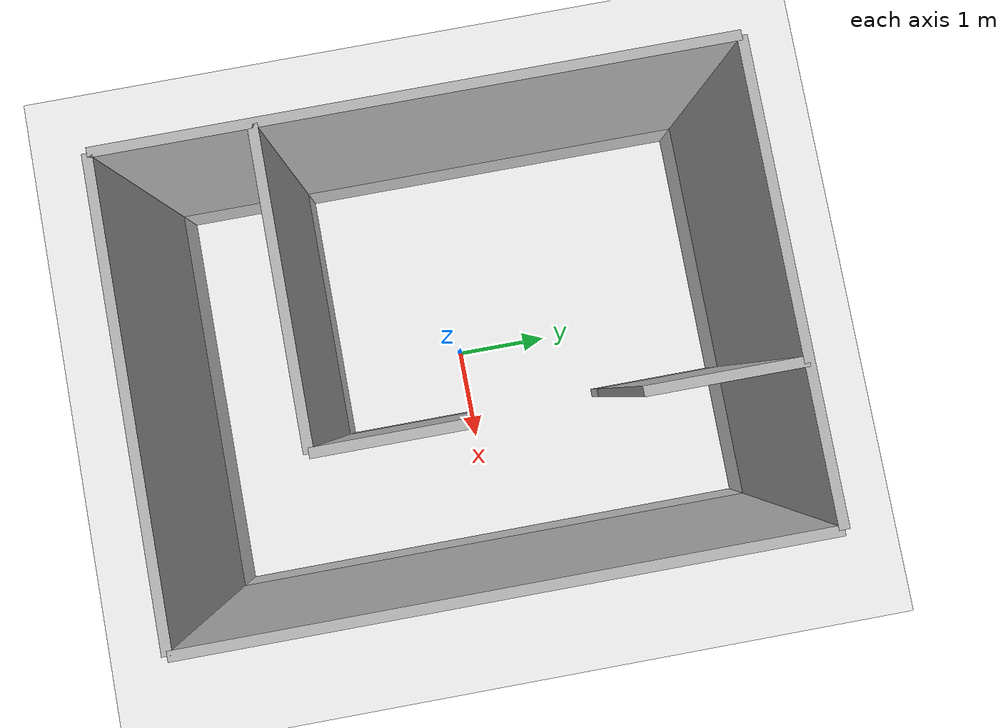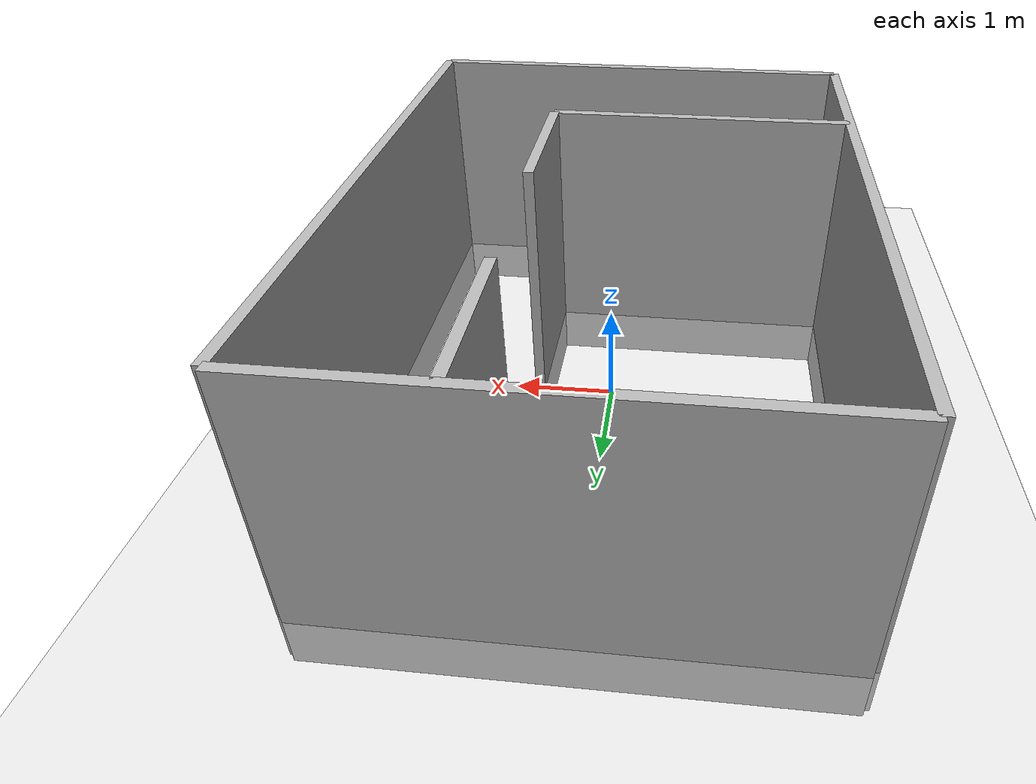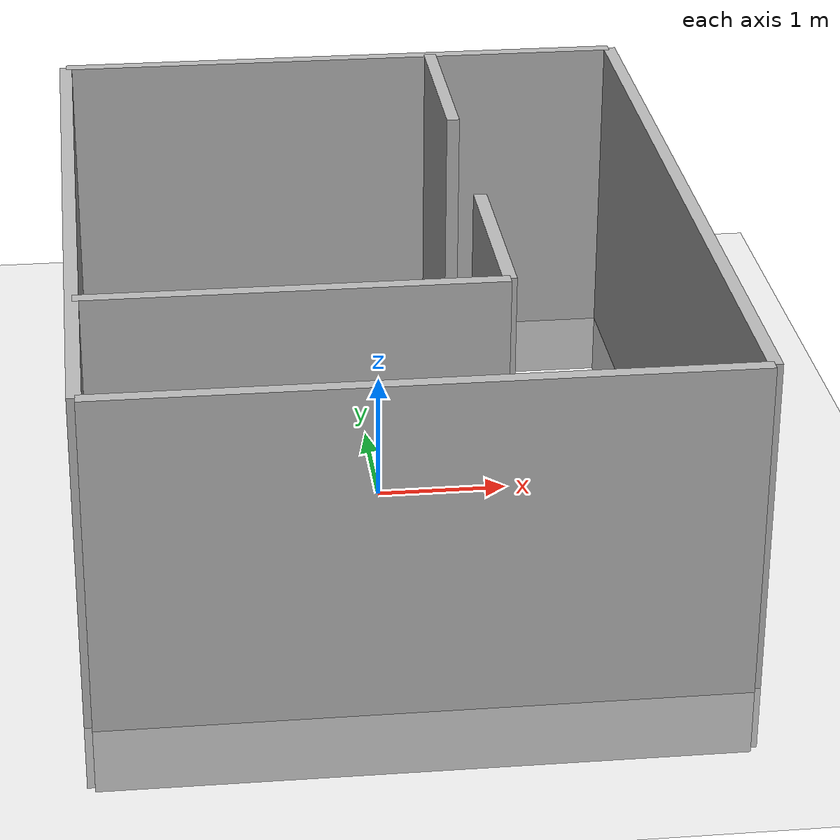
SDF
<?xml version="1.0" ?>
<sdf version="1.6">
    <world name="room_hallway_world">
        <include>
            <uri>model://ground_plane</uri>
        </include>

        <include>
            <uri>model://sun</uri>
        </include>

        <model name="back_wall">
            <static>true</static>
            <link name="link">
                <collision name="collision">
                    <geometry>
                        <box>
                            <size>4.57 0.1 3</size>
                        </box>
                    </geometry>
                </collision>
                <visual name="visual">
                    <geometry>
                        <box>
                            <size>4.57 0.1 3</size>
                        </box>
                    </geometry>
                </visual>
                <pose>0 -3.05 1 0 0 0</pose>
            </link>
        </model>

        <model name="left_wall">
            <static>true</static>
            <link name="link">
                <collision name="collision">
                    <geometry>
                        <box>
                            <size>0.1 6.1 3</size>
                        </box>
                    </geometry>
                </collision>
                <visual name="visual">
                    <geometry>
                        <box>
                            <size>0.1 6.1 3</size>
                        </box>
                    </geometry>
                </visual>
                <pose>-2.29 0 1 0 0 0</pose>
            </link>
        </model>

        <model name="right_wall">
            <static>true</static>
            <link name="link">
                <collision name="collision">
                    <geometry>
                        <box>
                            <size>0.1 6.1 3</size>
                        </box>
                    </geometry>
                </collision>
                <visual name="visual">
                    <geometry>
                        <box>
                            <size>0.1 6.1 3</size>
                        </box>
                    </geometry>
                </visual>
                <pose>2.29 0 1 0 0 0</pose>
            </link>
        </model>

        <model name="front_wall">
            <static>true</static>
            <link name="link">
                <collision name="collision">
                    <geometry>
                        <box>
                            <size>4.57 0.1 3</size>
                        </box>
                    </geometry>
                </collision>
                <visual name="visual">
                    <geometry>
                        <box>
                            <size>4.57 0.1 3</size>
                        </box>
                    </geometry>
                </visual>
                <pose>0 3.05 1 0 0 0</pose>
            </link>
        </model>

        <model name="back_room_wall">
            <static>true</static>
            <link name="link">
                <collision name="collision">
                    <geometry>
                        <box>
                            <size>3.05 0.1 3</size>
                        </box>
                    </geometry>
                </collision>
                <visual name="visual">
                    <geometry>
                        <box>
                            <size>3.05 0.1 3</size>
                        </box>
                    </geometry>
                </visual>
                <pose>-0.76 -1.52 1 0 0 0</pose>
            </link>
        </model>

        <model name="right_room_wall1">
            <static>true</static>
            <link name="link">
                <collision name="collision">
                    <geometry>
                        <box>
                            <size>0.1 1.52 3</size>
                        </box>
                    </geometry>
                </collision>
                <visual name="visual">
                    <geometry>
                        <box>
                            <size>0.1 1.52 3</size>
                        </box>
                    </geometry>
                </visual>
                <pose>0.76 -0.76 1 0 0 0</pose>
            </link>
        </model>

        <model name="right_room_wall2">
            <static>true</static>
            <link name="link">
                <collision name="collision">
                    <geometry>
                        <box>
                            <size>0.1 1.52 3</size>
                        </box>
                    </geometry>
                </collision>
                <visual name="visual">
                    <geometry>
                        <box>
                            <size>0.1 1.52 3</size>
                        </box>
                    </geometry>
                </visual>
                <pose>0.76 2.29 1 0 0 0</pose>
            </link>
        </model>
    </world>
</sdf>
